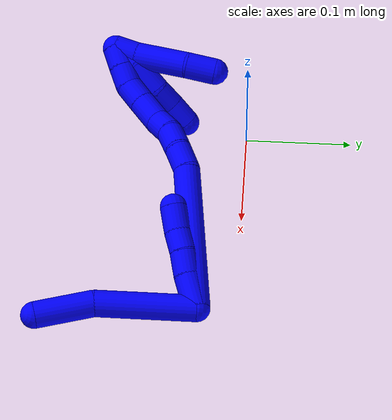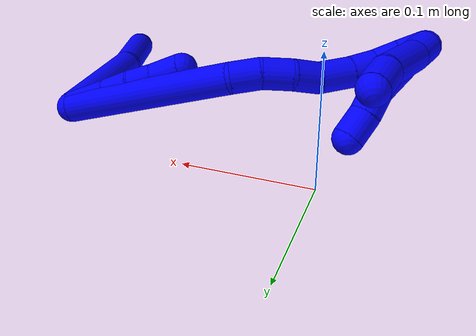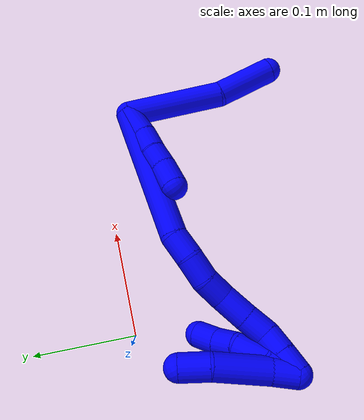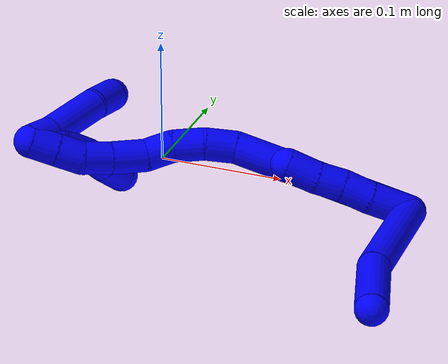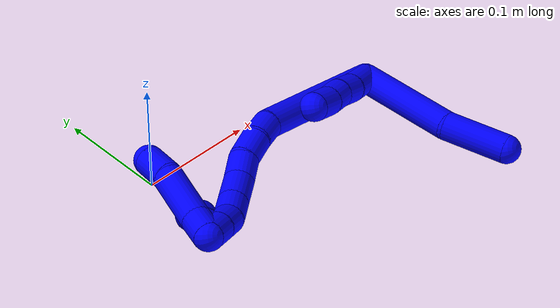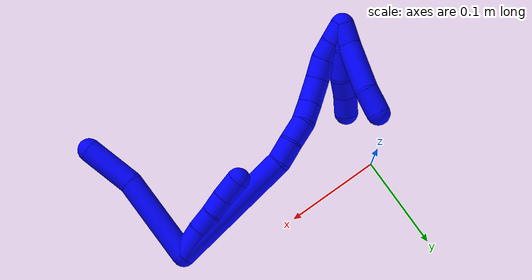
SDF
<sdf version="1.7">
 <world name="default">
  <model name="1">
   <static>0</static>
   <link name="1">
    <collision name="collision-cylinder-e_1_2_8">
     <pose>-0.005855 -0.023077 0.040562 0.517259 -0.124804 -0.033058</pose>
     <geometry><cylinder><radius>0.0125</radius><length>0.094065</length></cylinder></geometry>
     <surface>
      <friction><ode><mu>1.16</mu><mu2>1.16</mu2><slip1>0</slip1><slip2>0</slip2></ode></friction>
      <contact><ode><kp>1e+06</kp><kd>1</kd><max_vel>0</max_vel><min_depth>0.001</min_depth></ode></contact>
     </surface>
    </collision>
    <visual name="visual-cylinder-e_1_2_8">
     <pose>-0.005855 -0.023077 0.040562 0.517259 -0.124804 -0.033058</pose>
     <geometry><cylinder><radius>0.0125</radius><length>0.094065</length></cylinder></geometry>
     <material><ambient>0 0 1 1</ambient></material>
    </visual>
    <collision name="collision-cylinder-e_2_8_6">
     <pose>-0.007784 -0.058919 0.105696 0.479143 0.140809 0.034448</pose>
     <geometry><cylinder><radius>0.0125</radius><length>0.055935</length></cylinder></geometry>
     <surface>
      <friction><ode><mu>1.16</mu><mu2>1.16</mu2><slip1>0</slip1><slip2>0</slip2></ode></friction>
      <contact><ode><kp>1e+06</kp><kd>1</kd><max_vel>0</max_vel><min_depth>0.001</min_depth></ode></contact>
     </surface>
    </collision>
    <visual name="visual-cylinder-e_2_8_6">
     <pose>-0.007784 -0.058919 0.105696 0.479143 0.140809 0.034448</pose>
     <geometry><cylinder><radius>0.0125</radius><length>0.055935</length></cylinder></geometry>
     <material><ambient>0 0 1 1</ambient></material>
    </visual>
    <collision name="collision-cylinder-e_1_2_9">
     <pose>-0.015929 -0.001294 0.002911 0.418196 -1.37342 -0.344483</pose>
     <geometry><cylinder><radius>0.0125</radius><length>0.032488</length></cylinder></geometry>
     <surface>
      <friction><ode><mu>1.16</mu><mu2>1.16</mu2><slip1>0</slip1><slip2>0</slip2></ode></friction>
      <contact><ode><kp>1e+06</kp><kd>1</kd><max_vel>0</max_vel><min_depth>0.001</min_depth></ode></contact>
     </surface>
    </collision>
    <visual name="visual-cylinder-e_1_2_9">
     <pose>-0.015929 -0.001294 0.002911 0.418196 -1.37342 -0.344483</pose>
     <geometry><cylinder><radius>0.0125</radius><length>0.032488</length></cylinder></geometry>
     <material><ambient>0 0 1 1</ambient></material>
    </visual>
    <collision name="collision-cylinder-e_2_9_10">
     <pose>-0.043145 -0.002468 0.007033 -0.097905 -1.46338 0.087928</pose>
     <geometry><cylinder><radius>0.0125</radius><length>0.022705</length></cylinder></geometry>
     <surface>
      <friction><ode><mu>1.16</mu><mu2>1.16</mu2><slip1>0</slip1><slip2>0</slip2></ode></friction>
      <contact><ode><kp>1e+06</kp><kd>1</kd><max_vel>0</max_vel><min_depth>0.001</min_depth></ode></contact>
     </surface>
    </collision>
    <visual name="visual-cylinder-e_2_9_10">
     <pose>-0.043145 -0.002468 0.007033 -0.097905 -1.46338 0.087928</pose>
     <geometry><cylinder><radius>0.0125</radius><length>0.022705</length></cylinder></geometry>
     <material><ambient>0 0 1 1</ambient></material>
    </visual>
    <collision name="collision-cylinder-e_3_10_11">
     <pose>-0.064322 -0.003582 0.009586 0.743216 -1.38866 -0.627545</pose>
     <geometry><cylinder><radius>0.0125</radius><length>0.020113</length></cylinder></geometry>
     <surface>
      <friction><ode><mu>1.16</mu><mu2>1.16</mu2><slip1>0</slip1><slip2>0</slip2></ode></friction>
      <contact><ode><kp>1e+06</kp><kd>1</kd><max_vel>0</max_vel><min_depth>0.001</min_depth></ode></contact>
     </surface>
    </collision>
    <visual name="visual-cylinder-e_3_10_11">
     <pose>-0.064322 -0.003582 0.009586 0.743216 -1.38866 -0.627545</pose>
     <geometry><cylinder><radius>0.0125</radius><length>0.020113</length></cylinder></geometry>
     <material><ambient>0 0 1 1</ambient></material>
    </visual>
    <collision name="collision-cylinder-e_4_11_5">
     <pose>-0.08649 -0.004771 0.012231 -0.032967 -1.46493 0.02965</pose>
     <geometry><cylinder><radius>0.0125</radius><length>0.024694</length></cylinder></geometry>
     <surface>
      <friction><ode><mu>1.16</mu><mu2>1.16</mu2><slip1>0</slip1><slip2>0</slip2></ode></friction>
      <contact><ode><kp>1e+06</kp><kd>1</kd><max_vel>0</max_vel><min_depth>0.001</min_depth></ode></contact>
     </surface>
    </collision>
    <visual name="visual-cylinder-e_4_11_5">
     <pose>-0.08649 -0.004771 0.012231 -0.032967 -1.46493 0.02965</pose>
     <geometry><cylinder><radius>0.0125</radius><length>0.024694</length></cylinder></geometry>
     <material><ambient>0 0 1 1</ambient></material>
    </visual>
    <collision name="collision-cylinder-e_1_2_12">
     <pose>-0.069825 -0.004302 -0.003206 2.21114 -1.49411 -2.14819</pose>
     <geometry><cylinder><radius>0.0125</radius><length>0.140061</length></cylinder></geometry>
     <surface>
      <friction><ode><mu>1.16</mu><mu2>1.16</mu2><slip1>0</slip1><slip2>0</slip2></ode></friction>
      <contact><ode><kp>1e+06</kp><kd>1</kd><max_vel>0</max_vel><min_depth>0.001</min_depth></ode></contact>
     </surface>
    </collision>
    <visual name="visual-cylinder-e_1_2_12">
     <pose>-0.069825 -0.004302 -0.003206 2.21114 -1.49411 -2.14819</pose>
     <geometry><cylinder><radius>0.0125</radius><length>0.140061</length></cylinder></geometry>
     <material><ambient>0 0 1 1</ambient></material>
    </visual>
    <collision name="collision-cylinder-e_2_12_13">
     <pose>-0.150979 -0.012207 -0.004788 1.14728 -1.23527 -0.860564</pose>
     <geometry><cylinder><radius>0.0125</radius><length>0.023998</length></cylinder></geometry>
     <surface>
      <friction><ode><mu>1.16</mu><mu2>1.16</mu2><slip1>0</slip1><slip2>0</slip2></ode></friction>
      <contact><ode><kp>1e+06</kp><kd>1</kd><max_vel>0</max_vel><min_depth>0.001</min_depth></ode></contact>
     </surface>
    </collision>
    <visual name="visual-cylinder-e_2_12_13">
     <pose>-0.150979 -0.012207 -0.004788 1.14728 -1.23527 -0.860564</pose>
     <geometry><cylinder><radius>0.0125</radius><length>0.023998</length></cylinder></geometry>
     <material><ambient>0 0 1 1</ambient></material>
    </visual>
    <collision name="collision-cylinder-e_3_13_14">
     <pose>-0.172808 -0.02137 -0.002815 1.50813 -1.08285 -1.02829</pose>
     <geometry><cylinder><radius>0.0125</radius><length>0.023774</length></cylinder></geometry>
     <surface>
      <friction><ode><mu>1.16</mu><mu2>1.16</mu2><slip1>0</slip1><slip2>0</slip2></ode></friction>
      <contact><ode><kp>1e+06</kp><kd>1</kd><max_vel>0</max_vel><min_depth>0.001</min_depth></ode></contact>
     </surface>
    </collision>
    <visual name="visual-cylinder-e_3_13_14">
     <pose>-0.172808 -0.02137 -0.002815 1.50813 -1.08285 -1.02829</pose>
     <geometry><cylinder><radius>0.0125</radius><length>0.023774</length></cylinder></geometry>
     <material><ambient>0 0 1 1</ambient></material>
    </visual>
    <collision name="collision-cylinder-e_4_14_15">
     <pose>-0.191263 -0.034244 -0.00081 1.34803 -0.815026 -0.664117</pose>
     <geometry><cylinder><radius>0.0125</radius><length>0.021862</length></cylinder></geometry>
     <surface>
      <friction><ode><mu>1.16</mu><mu2>1.16</mu2><slip1>0</slip1><slip2>0</slip2></ode></friction>
      <contact><ode><kp>1e+06</kp><kd>1</kd><max_vel>0</max_vel><min_depth>0.001</min_depth></ode></contact>
     </surface>
    </collision>
    <visual name="visual-cylinder-e_4_14_15">
     <pose>-0.191263 -0.034244 -0.00081 1.34803 -0.815026 -0.664117</pose>
     <geometry><cylinder><radius>0.0125</radius><length>0.021862</length></cylinder></geometry>
     <material><ambient>0 0 1 1</ambient></material>
    </visual>
    <collision name="collision-cylinder-e_5_15_16">
     <pose>-0.210727 -0.047723 0.005063 0.971184 -0.99504 -0.558252</pose>
     <geometry><cylinder><radius>0.0125</radius><length>0.027442</length></cylinder></geometry>
     <surface>
      <friction><ode><mu>1.16</mu><mu2>1.16</mu2><slip1>0</slip1><slip2>0</slip2></ode></friction>
      <contact><ode><kp>1e+06</kp><kd>1</kd><max_vel>0</max_vel><min_depth>0.001</min_depth></ode></contact>
     </surface>
    </collision>
    <visual name="visual-cylinder-e_5_15_16">
     <pose>-0.210727 -0.047723 0.005063 0.971184 -0.99504 -0.558252</pose>
     <geometry><cylinder><radius>0.0125</radius><length>0.027442</length></cylinder></geometry>
     <material><ambient>0 0 1 1</ambient></material>
    </visual>
    <collision name="collision-cylinder-e_6_16_17">
     <pose>-0.231712 -0.0581 0.013334 0.804007 -1.01815 -0.465977</pose>
     <geometry><cylinder><radius>0.0125</radius><length>0.022268</length></cylinder></geometry>
     <surface>
      <friction><ode><mu>1.16</mu><mu2>1.16</mu2><slip1>0</slip1><slip2>0</slip2></ode></friction>
      <contact><ode><kp>1e+06</kp><kd>1</kd><max_vel>0</max_vel><min_depth>0.001</min_depth></ode></contact>
     </surface>
    </collision>
    <visual name="visual-cylinder-e_6_16_17">
     <pose>-0.231712 -0.0581 0.013334 0.804007 -1.01815 -0.465977</pose>
     <geometry><cylinder><radius>0.0125</radius><length>0.022268</length></cylinder></geometry>
     <material><ambient>0 0 1 1</ambient></material>
    </visual>
    <collision name="collision-cylinder-e_7_17_18">
     <pose>-0.250867 -0.063141 0.019836 0.327763 -1.30979 -0.252633</pose>
     <geometry><cylinder><radius>0.0125</radius><length>0.020035</length></cylinder></geometry>
     <surface>
      <friction><ode><mu>1.16</mu><mu2>1.16</mu2><slip1>0</slip1><slip2>0</slip2></ode></friction>
      <contact><ode><kp>1e+06</kp><kd>1</kd><max_vel>0</max_vel><min_depth>0.001</min_depth></ode></contact>
     </surface>
    </collision>
    <visual name="visual-cylinder-e_7_17_18">
     <pose>-0.250867 -0.063141 0.019836 0.327763 -1.30979 -0.252633</pose>
     <geometry><cylinder><radius>0.0125</radius><length>0.020035</length></cylinder></geometry>
     <material><ambient>0 0 1 1</ambient></material>
    </visual>
    <collision name="collision-cylinder-e_8_18_1">
     <pose>-0.270532 -0.064876 0.02455 0.37934 -1.33121 -0.299201</pose>
     <geometry><cylinder><radius>0.0125</radius><length>0.020561</length></cylinder></geometry>
     <surface>
      <friction><ode><mu>1.16</mu><mu2>1.16</mu2><slip1>0</slip1><slip2>0</slip2></ode></friction>
      <contact><ode><kp>1e+06</kp><kd>1</kd><max_vel>0</max_vel><min_depth>0.001</min_depth></ode></contact>
     </surface>
    </collision>
    <visual name="visual-cylinder-e_8_18_1">
     <pose>-0.270532 -0.064876 0.02455 0.37934 -1.33121 -0.299201</pose>
     <geometry><cylinder><radius>0.0125</radius><length>0.020561</length></cylinder></geometry>
     <material><ambient>0 0 1 1</ambient></material>
    </visual>
    <collision name="collision-cylinder-e_1_1_19">
     <pose>-0.271625 -0.062634 0.018616 -2.77533 0.79167 -2.30724</pose>
     <geometry><cylinder><radius>0.0125</radius><length>0.024999</length></cylinder></geometry>
     <surface>
      <friction><ode><mu>1.16</mu><mu2>1.16</mu2><slip1>0</slip1><slip2>0</slip2></ode></friction>
      <contact><ode><kp>1e+06</kp><kd>1</kd><max_vel>0</max_vel><min_depth>0.001</min_depth></ode></contact>
     </surface>
    </collision>
    <visual name="visual-cylinder-e_1_1_19">
     <pose>-0.271625 -0.062634 0.018616 -2.77533 0.79167 -2.30724</pose>
     <geometry><cylinder><radius>0.0125</radius><length>0.024999</length></cylinder></geometry>
     <material><ambient>0 0 1 1</ambient></material>
    </visual>
    <collision name="collision-cylinder-e_2_19_20">
     <pose>-0.251311 -0.059189 -0.000161 -3.11323 0.823541 -3.07668</pose>
     <geometry><cylinder><radius>0.0125</radius><length>0.031135</length></cylinder></geometry>
     <surface>
      <friction><ode><mu>1.16</mu><mu2>1.16</mu2><slip1>0</slip1><slip2>0</slip2></ode></friction>
      <contact><ode><kp>1e+06</kp><kd>1</kd><max_vel>0</max_vel><min_depth>0.001</min_depth></ode></contact>
     </surface>
    </collision>
    <visual name="visual-cylinder-e_2_19_20">
     <pose>-0.251311 -0.059189 -0.000161 -3.11323 0.823541 -3.07668</pose>
     <geometry><cylinder><radius>0.0125</radius><length>0.031135</length></cylinder></geometry>
     <material><ambient>0 0 1 1</ambient></material>
    </visual>
    <collision name="collision-cylinder-e_3_20_21">
     <pose>-0.233873 -0.060708 -0.019285 2.93191 0.603102 2.48913</pose>
     <geometry><cylinder><radius>0.0125</radius><length>0.021223</length></cylinder></geometry>
     <surface>
      <friction><ode><mu>1.16</mu><mu2>1.16</mu2><slip1>0</slip1><slip2>0</slip2></ode></friction>
      <contact><ode><kp>1e+06</kp><kd>1</kd><max_vel>0</max_vel><min_depth>0.001</min_depth></ode></contact>
     </surface>
    </collision>
    <visual name="visual-cylinder-e_3_20_21">
     <pose>-0.233873 -0.060708 -0.019285 2.93191 0.603102 2.48913</pose>
     <geometry><cylinder><radius>0.0125</radius><length>0.021223</length></cylinder></geometry>
     <material><ambient>0 0 1 1</ambient></material>
    </visual>
    <collision name="collision-cylinder-e_4_21_4">
     <pose>-0.220339 -0.063535 -0.03624 3.02233 0.725908 2.82973</pose>
     <geometry><cylinder><radius>0.0125</radius><length>0.022642</length></cylinder></geometry>
     <surface>
      <friction><ode><mu>1.16</mu><mu2>1.16</mu2><slip1>0</slip1><slip2>0</slip2></ode></friction>
      <contact><ode><kp>1e+06</kp><kd>1</kd><max_vel>0</max_vel><min_depth>0.001</min_depth></ode></contact>
     </surface>
    </collision>
    <visual name="visual-cylinder-e_4_21_4">
     <pose>-0.220339 -0.063535 -0.03624 3.02233 0.725908 2.82973</pose>
     <geometry><cylinder><radius>0.0125</radius><length>0.022642</length></cylinder></geometry>
     <material><ambient>0 0 1 1</ambient></material>
    </visual>
    <collision name="collision-cylinder-e_1_1_22">
     <pose>-0.275766 -0.06021 0.018592 -2.54629 0.446303 -1.27383</pose>
     <geometry><cylinder><radius>0.0125</radius><length>0.022022</length></cylinder></geometry>
     <surface>
      <friction><ode><mu>1.16</mu><mu2>1.16</mu2><slip1>0</slip1><slip2>0</slip2></ode></friction>
      <contact><ode><kp>1e+06</kp><kd>1</kd><max_vel>0</max_vel><min_depth>0.001</min_depth></ode></contact>
     </surface>
    </collision>
    <visual name="visual-cylinder-e_1_1_22">
     <pose>-0.275766 -0.06021 0.018592 -2.54629 0.446303 -1.27383</pose>
     <geometry><cylinder><radius>0.0125</radius><length>0.022022</length></cylinder></geometry>
     <material><ambient>0 0 1 1</ambient></material>
    </visual>
    <collision name="collision-cylinder-e_2_22_23">
     <pose>-0.262125 -0.038739 -0.007161 -2.40486 0.359269 -0.879478</pose>
     <geometry><cylinder><radius>0.0125</radius><length>0.050562</length></cylinder></geometry>
     <surface>
      <friction><ode><mu>1.16</mu><mu2>1.16</mu2><slip1>0</slip1><slip2>0</slip2></ode></friction>
      <contact><ode><kp>1e+06</kp><kd>1</kd><max_vel>0</max_vel><min_depth>0.001</min_depth></ode></contact>
     </surface>
    </collision>
    <visual name="visual-cylinder-e_2_22_23">
     <pose>-0.262125 -0.038739 -0.007161 -2.40486 0.359269 -0.879478</pose>
     <geometry><cylinder><radius>0.0125</radius><length>0.050562</length></cylinder></geometry>
     <material><ambient>0 0 1 1</ambient></material>
    </visual>
    <collision name="collision-cylinder-e_3_23_3">
     <pose>-0.249113 -0.016591 -0.036174 -2.64337 0.305507 -1.08842</pose>
     <geometry><cylinder><radius>0.0125</radius><length>0.027416</length></cylinder></geometry>
     <surface>
      <friction><ode><mu>1.16</mu><mu2>1.16</mu2><slip1>0</slip1><slip2>0</slip2></ode></friction>
      <contact><ode><kp>1e+06</kp><kd>1</kd><max_vel>0</max_vel><min_depth>0.001</min_depth></ode></contact>
     </surface>
    </collision>
    <visual name="visual-cylinder-e_3_23_3">
     <pose>-0.249113 -0.016591 -0.036174 -2.64337 0.305507 -1.08842</pose>
     <geometry><cylinder><radius>0.0125</radius><length>0.027416</length></cylinder></geometry>
     <material><ambient>0 0 1 1</ambient></material>
    </visual>
    <collision name="collision-sphere-3">
     <pose>-0.24499 -0.010344 -0.047658 0 -0 0</pose>
     <geometry><sphere><radius>0.0125</radius></sphere></geometry>
     <surface>
      <friction><ode><mu>1.16</mu><mu2>1.16</mu2><slip1>0</slip1><slip2>0</slip2></ode></friction>
      <contact><ode><kp>1e+06</kp><kd>1</kd><max_vel>0</max_vel><min_depth>0.001</min_depth></ode></contact>
     </surface>
    </collision>
    <visual name="visual-sphere-3">
     <pose>-0.24499 -0.010344 -0.047658 0 -0 0</pose>
     <geometry><sphere><radius>0.0125</radius></sphere></geometry>
     <material><ambient>0 0 1 1</ambient></material>
    </visual>
    <collision name="collision-sphere-23">
     <pose>-0.253236 -0.022838 -0.02469 0 -0 0</pose>
     <geometry><sphere><radius>0.0125</radius></sphere></geometry>
     <surface>
      <friction><ode><mu>1.16</mu><mu2>1.16</mu2><slip1>0</slip1><slip2>0</slip2></ode></friction>
      <contact><ode><kp>1e+06</kp><kd>1</kd><max_vel>0</max_vel><min_depth>0.001</min_depth></ode></contact>
     </surface>
    </collision>
    <visual name="visual-sphere-23">
     <pose>-0.253236 -0.022838 -0.02469 0 -0 0</pose>
     <geometry><sphere><radius>0.0125</radius></sphere></geometry>
     <material><ambient>0 0 1 1</ambient></material>
    </visual>
    <collision name="collision-sphere-22">
     <pose>-0.271013 -0.05464 0.010368 0 -0 0</pose>
     <geometry><sphere><radius>0.0125</radius></sphere></geometry>
     <surface>
      <friction><ode><mu>1.16</mu><mu2>1.16</mu2><slip1>0</slip1><slip2>0</slip2></ode></friction>
      <contact><ode><kp>1e+06</kp><kd>1</kd><max_vel>0</max_vel><min_depth>0.001</min_depth></ode></contact>
     </surface>
    </collision>
    <visual name="visual-sphere-22">
     <pose>-0.271013 -0.05464 0.010368 0 -0 0</pose>
     <geometry><sphere><radius>0.0125</radius></sphere></geometry>
     <material><ambient>0 0 1 1</ambient></material>
    </visual>
    <collision name="collision-sphere-4">
     <pose>-0.212823 -0.064542 -0.044647 0 -0 0</pose>
     <geometry><sphere><radius>0.0125</radius></sphere></geometry>
     <surface>
      <friction><ode><mu>1.16</mu><mu2>1.16</mu2><slip1>0</slip1><slip2>0</slip2></ode></friction>
      <contact><ode><kp>1e+06</kp><kd>1</kd><max_vel>0</max_vel><min_depth>0.001</min_depth></ode></contact>
     </surface>
    </collision>
    <visual name="visual-sphere-4">
     <pose>-0.212823 -0.064542 -0.044647 0 -0 0</pose>
     <geometry><sphere><radius>0.0125</radius></sphere></geometry>
     <material><ambient>0 0 1 1</ambient></material>
    </visual>
    <collision name="collision-sphere-21">
     <pose>-0.227854 -0.062527 -0.027833 0 -0 0</pose>
     <geometry><sphere><radius>0.0125</radius></sphere></geometry>
     <surface>
      <friction><ode><mu>1.16</mu><mu2>1.16</mu2><slip1>0</slip1><slip2>0</slip2></ode></friction>
      <contact><ode><kp>1e+06</kp><kd>1</kd><max_vel>0</max_vel><min_depth>0.001</min_depth></ode></contact>
     </surface>
    </collision>
    <visual name="visual-sphere-21">
     <pose>-0.227854 -0.062527 -0.027833 0 -0 0</pose>
     <geometry><sphere><radius>0.0125</radius></sphere></geometry>
     <material><ambient>0 0 1 1</ambient></material>
    </visual>
    <collision name="collision-sphere-20">
     <pose>-0.239891 -0.058889 -0.010737 0 -0 0</pose>
     <geometry><sphere><radius>0.0125</radius></sphere></geometry>
     <surface>
      <friction><ode><mu>1.16</mu><mu2>1.16</mu2><slip1>0</slip1><slip2>0</slip2></ode></friction>
      <contact><ode><kp>1e+06</kp><kd>1</kd><max_vel>0</max_vel><min_depth>0.001</min_depth></ode></contact>
     </surface>
    </collision>
    <visual name="visual-sphere-20">
     <pose>-0.239891 -0.058889 -0.010737 0 -0 0</pose>
     <geometry><sphere><radius>0.0125</radius></sphere></geometry>
     <material><ambient>0 0 1 1</ambient></material>
    </visual>
    <collision name="collision-sphere-11">
     <pose>-0.074212 -0.004814 0.010927 0 -0 0</pose>
     <geometry><sphere><radius>0.0125</radius></sphere></geometry>
     <surface>
      <friction><ode><mu>1.16</mu><mu2>1.16</mu2><slip1>0</slip1><slip2>0</slip2></ode></friction>
      <contact><ode><kp>1e+06</kp><kd>1</kd><max_vel>0</max_vel><min_depth>0.001</min_depth></ode></contact>
     </surface>
    </collision>
    <visual name="visual-sphere-11">
     <pose>-0.074212 -0.004814 0.010927 0 -0 0</pose>
     <geometry><sphere><radius>0.0125</radius></sphere></geometry>
     <material><ambient>0 0 1 1</ambient></material>
    </visual>
    <collision name="collision-sphere-10">
     <pose>-0.054432 -0.002349 0.008245 0 -0 0</pose>
     <geometry><sphere><radius>0.0125</radius></sphere></geometry>
     <surface>
      <friction><ode><mu>1.16</mu><mu2>1.16</mu2><slip1>0</slip1><slip2>0</slip2></ode></friction>
      <contact><ode><kp>1e+06</kp><kd>1</kd><max_vel>0</max_vel><min_depth>0.001</min_depth></ode></contact>
     </surface>
    </collision>
    <visual name="visual-sphere-10">
     <pose>-0.054432 -0.002349 0.008245 0 -0 0</pose>
     <geometry><sphere><radius>0.0125</radius></sphere></geometry>
     <material><ambient>0 0 1 1</ambient></material>
    </visual>
    <collision name="collision-sphere-6">
     <pose>-0.003859 -0.071685 0.130268 0 -0 0</pose>
     <geometry><sphere><radius>0.0125</radius></sphere></geometry>
     <surface>
      <friction><ode><mu>1.16</mu><mu2>1.16</mu2><slip1>0</slip1><slip2>0</slip2></ode></friction>
      <contact><ode><kp>1e+06</kp><kd>1</kd><max_vel>0</max_vel><min_depth>0.001</min_depth></ode></contact>
     </surface>
    </collision>
    <visual name="visual-sphere-6">
     <pose>-0.003859 -0.071685 0.130268 0 -0 0</pose>
     <geometry><sphere><radius>0.0125</radius></sphere></geometry>
     <material><ambient>0 0 1 1</ambient></material>
    </visual>
    <collision name="collision-sphere-9">
     <pose>-0.031858 -0.002587 0.005822 0 -0 0</pose>
     <geometry><sphere><radius>0.0125</radius></sphere></geometry>
     <surface>
      <friction><ode><mu>1.16</mu><mu2>1.16</mu2><slip1>0</slip1><slip2>0</slip2></ode></friction>
      <contact><ode><kp>1e+06</kp><kd>1</kd><max_vel>0</max_vel><min_depth>0.001</min_depth></ode></contact>
     </surface>
    </collision>
    <visual name="visual-sphere-9">
     <pose>-0.031858 -0.002587 0.005822 0 -0 0</pose>
     <geometry><sphere><radius>0.0125</radius></sphere></geometry>
     <material><ambient>0 0 1 1</ambient></material>
    </visual>
    <collision name="collision-sphere-2">
     <geometry><sphere><radius>0.0125</radius></sphere></geometry>
     <surface>
      <friction><ode><mu>1.16</mu><mu2>1.16</mu2><slip1>0</slip1><slip2>0</slip2></ode></friction>
      <contact><ode><kp>1e+06</kp><kd>1</kd><max_vel>0</max_vel><min_depth>0.001</min_depth></ode></contact>
     </surface>
    </collision>
    <visual name="visual-sphere-2">
     <geometry><sphere><radius>0.0125</radius></sphere></geometry>
     <material><ambient>0 0 1 1</ambient></material>
    </visual>
    <collision name="collision-sphere-19">
     <pose>-0.262731 -0.059489 0.010415 0 -0 0</pose>
     <geometry><sphere><radius>0.0125</radius></sphere></geometry>
     <surface>
      <friction><ode><mu>1.16</mu><mu2>1.16</mu2><slip1>0</slip1><slip2>0</slip2></ode></friction>
      <contact><ode><kp>1e+06</kp><kd>1</kd><max_vel>0</max_vel><min_depth>0.001</min_depth></ode></contact>
     </surface>
    </collision>
    <visual name="visual-sphere-19">
     <pose>-0.262731 -0.059489 0.010415 0 -0 0</pose>
     <geometry><sphere><radius>0.0125</radius></sphere></geometry>
     <material><ambient>0 0 1 1</ambient></material>
    </visual>
    <collision name="collision-sphere-8">
     <pose>-0.011709 -0.046153 0.081123 0 -0 0</pose>
     <geometry><sphere><radius>0.0125</radius></sphere></geometry>
     <surface>
      <friction><ode><mu>1.16</mu><mu2>1.16</mu2><slip1>0</slip1><slip2>0</slip2></ode></friction>
      <contact><ode><kp>1e+06</kp><kd>1</kd><max_vel>0</max_vel><min_depth>0.001</min_depth></ode></contact>
     </surface>
    </collision>
    <visual name="visual-sphere-8">
     <pose>-0.011709 -0.046153 0.081123 0 -0 0</pose>
     <geometry><sphere><radius>0.0125</radius></sphere></geometry>
     <material><ambient>0 0 1 1</ambient></material>
    </visual>
    <collision name="collision-sphere-5">
     <pose>-0.098767 -0.004728 0.013535 0 -0 0</pose>
     <geometry><sphere><radius>0.0125</radius></sphere></geometry>
     <surface>
      <friction><ode><mu>1.16</mu><mu2>1.16</mu2><slip1>0</slip1><slip2>0</slip2></ode></friction>
      <contact><ode><kp>1e+06</kp><kd>1</kd><max_vel>0</max_vel><min_depth>0.001</min_depth></ode></contact>
     </surface>
    </collision>
    <visual name="visual-sphere-5">
     <pose>-0.098767 -0.004728 0.013535 0 -0 0</pose>
     <geometry><sphere><radius>0.0125</radius></sphere></geometry>
     <material><ambient>0 0 1 1</ambient></material>
    </visual>
    <collision name="collision-sphere-12">
     <pose>-0.139649 -0.008605 -0.006411 0 -0 0</pose>
     <geometry><sphere><radius>0.0125</radius></sphere></geometry>
     <surface>
      <friction><ode><mu>1.16</mu><mu2>1.16</mu2><slip1>0</slip1><slip2>0</slip2></ode></friction>
      <contact><ode><kp>1e+06</kp><kd>1</kd><max_vel>0</max_vel><min_depth>0.001</min_depth></ode></contact>
     </surface>
    </collision>
    <visual name="visual-sphere-12">
     <pose>-0.139649 -0.008605 -0.006411 0 -0 0</pose>
     <geometry><sphere><radius>0.0125</radius></sphere></geometry>
     <material><ambient>0 0 1 1</ambient></material>
    </visual>
    <collision name="collision-sphere-13">
     <pose>-0.162309 -0.015808 -0.003164 0 -0 0</pose>
     <geometry><sphere><radius>0.0125</radius></sphere></geometry>
     <surface>
      <friction><ode><mu>1.16</mu><mu2>1.16</mu2><slip1>0</slip1><slip2>0</slip2></ode></friction>
      <contact><ode><kp>1e+06</kp><kd>1</kd><max_vel>0</max_vel><min_depth>0.001</min_depth></ode></contact>
     </surface>
    </collision>
    <visual name="visual-sphere-13">
     <pose>-0.162309 -0.015808 -0.003164 0 -0 0</pose>
     <geometry><sphere><radius>0.0125</radius></sphere></geometry>
     <material><ambient>0 0 1 1</ambient></material>
    </visual>
    <collision name="collision-sphere-14">
     <pose>-0.183308 -0.026932 -0.002466 0 -0 0</pose>
     <geometry><sphere><radius>0.0125</radius></sphere></geometry>
     <surface>
      <friction><ode><mu>1.16</mu><mu2>1.16</mu2><slip1>0</slip1><slip2>0</slip2></ode></friction>
      <contact><ode><kp>1e+06</kp><kd>1</kd><max_vel>0</max_vel><min_depth>0.001</min_depth></ode></contact>
     </surface>
    </collision>
    <visual name="visual-sphere-14">
     <pose>-0.183308 -0.026932 -0.002466 0 -0 0</pose>
     <geometry><sphere><radius>0.0125</radius></sphere></geometry>
     <material><ambient>0 0 1 1</ambient></material>
    </visual>
    <collision name="collision-sphere-15">
     <pose>-0.199218 -0.041556 0.000847 0 -0 0</pose>
     <geometry><sphere><radius>0.0125</radius></sphere></geometry>
     <surface>
      <friction><ode><mu>1.16</mu><mu2>1.16</mu2><slip1>0</slip1><slip2>0</slip2></ode></friction>
      <contact><ode><kp>1e+06</kp><kd>1</kd><max_vel>0</max_vel><min_depth>0.001</min_depth></ode></contact>
     </surface>
    </collision>
    <visual name="visual-sphere-15">
     <pose>-0.199218 -0.041556 0.000847 0 -0 0</pose>
     <geometry><sphere><radius>0.0125</radius></sphere></geometry>
     <material><ambient>0 0 1 1</ambient></material>
    </visual>
    <collision name="collision-sphere-16">
     <pose>-0.222236 -0.053891 0.009278 0 -0 0</pose>
     <geometry><sphere><radius>0.0125</radius></sphere></geometry>
     <surface>
      <friction><ode><mu>1.16</mu><mu2>1.16</mu2><slip1>0</slip1><slip2>0</slip2></ode></friction>
      <contact><ode><kp>1e+06</kp><kd>1</kd><max_vel>0</max_vel><min_depth>0.001</min_depth></ode></contact>
     </surface>
    </collision>
    <visual name="visual-sphere-16">
     <pose>-0.222236 -0.053891 0.009278 0 -0 0</pose>
     <geometry><sphere><radius>0.0125</radius></sphere></geometry>
     <material><ambient>0 0 1 1</ambient></material>
    </visual>
    <collision name="collision-sphere-17">
     <pose>-0.241189 -0.062309 0.017389 0 -0 0</pose>
     <geometry><sphere><radius>0.0125</radius></sphere></geometry>
     <surface>
      <friction><ode><mu>1.16</mu><mu2>1.16</mu2><slip1>0</slip1><slip2>0</slip2></ode></friction>
      <contact><ode><kp>1e+06</kp><kd>1</kd><max_vel>0</max_vel><min_depth>0.001</min_depth></ode></contact>
     </surface>
    </collision>
    <visual name="visual-sphere-17">
     <pose>-0.241189 -0.062309 0.017389 0 -0 0</pose>
     <geometry><sphere><radius>0.0125</radius></sphere></geometry>
     <material><ambient>0 0 1 1</ambient></material>
    </visual>
    <collision name="collision-sphere-18">
     <pose>-0.260545 -0.063973 0.022284 0 -0 0</pose>
     <geometry><sphere><radius>0.0125</radius></sphere></geometry>
     <surface>
      <friction><ode><mu>1.16</mu><mu2>1.16</mu2><slip1>0</slip1><slip2>0</slip2></ode></friction>
      <contact><ode><kp>1e+06</kp><kd>1</kd><max_vel>0</max_vel><min_depth>0.001</min_depth></ode></contact>
     </surface>
    </collision>
    <visual name="visual-sphere-18">
     <pose>-0.260545 -0.063973 0.022284 0 -0 0</pose>
     <geometry><sphere><radius>0.0125</radius></sphere></geometry>
     <material><ambient>0 0 1 1</ambient></material>
    </visual>
    <collision name="collision-sphere-1">
     <pose>-0.280519 -0.06578 0.026816 0 -0 0</pose>
     <geometry><sphere><radius>0.0125</radius></sphere></geometry>
     <surface>
      <friction><ode><mu>1.16</mu><mu2>1.16</mu2><slip1>0</slip1><slip2>0</slip2></ode></friction>
      <contact><ode><kp>1e+06</kp><kd>1</kd><max_vel>0</max_vel><min_depth>0.001</min_depth></ode></contact>
     </surface>
    </collision>
    <visual name="visual-sphere-1">
     <pose>-0.280519 -0.06578 0.026816 0 -0 0</pose>
     <geometry><sphere><radius>0.0125</radius></sphere></geometry>
     <material><ambient>0 0 1 1</ambient></material>
    </visual>
    <inertial>
     <pose>-0.133146 -0.030645 0.012603 0 -0 0</pose>
     <mass>0.75</mass>
     <inertia>
      <ixx>3.3e-05</ixx>
      <ixy>0</ixy>
      <ixz>0</ixz>
      <iyy>0.000297</iyy>
      <iyz>0</iyz>
      <izz>0.000304</izz>
     </inertia>
    </inertial>
   </link>
   <pose>0.21585 -0.035345 0.011497 1.07076 0.351486 0.13934</pose>
  </model>
 </world>
</sdf>
